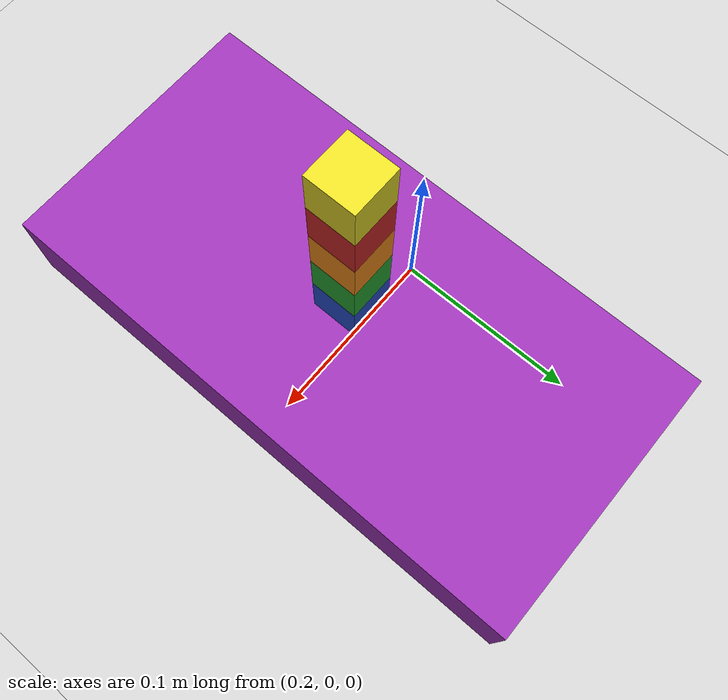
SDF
<sdf version="1.4">
  <world name="room2_with_ramp1">

    <!-- Global world -->
    <include>
      <uri>model://ground_plane</uri>
    </include>

    <!-- Global light source -->
    <include>
      <uri>model://sun</uri>
    </include>

    <physics type="ode">
      <real_time_update_rate>1000.0</real_time_update_rate>
      <max_step_size>0.001</max_step_size>
      <real_time_factor>1</real_time_factor>
      <ode>
        <solver>
          <type>quick</type>
          <iters>150</iters>
          <precon_iters>0</precon_iters>
          <sor>1.400000</sor>
          <use_dynamic_moi_rescaling>1</use_dynamic_moi_rescaling>
        </solver>
        <constraints>
          <cfm>0.00001</cfm>
          <erp>0.2</erp>
          <contact_max_correcting_vel>2000.000000</contact_max_correcting_vel>
          <contact_surface_layer>0.01000</contact_surface_layer>
        </constraints>
      </ode>
    </physics>

    <scene>
      <ambient>0.4 0.4 0.4 1</ambient>
      <background>0.7 0.7 0.7 1</background>
      <shadows>true</shadows>
    </scene>

    <gui fullscreen='0'>
      <camera name='user_camera'>
        <pose>0.8 2.0 12.0 0 1.5708 1.5708</pose>
        <view_controller>orbit</view_controller>
      </camera>
    </gui>

    <model name="ycb_base">
      <link name="link">
        <pose>0 0 0.025 0 0 0</pose>
        <inertial>
          <mass>0.01</mass>
          <inertia>
            <ixx>1</ixx>
            <ixy>0</ixy>
            <ixz>0</ixz>
            <iyy>1</iyy>
            <iyz>0</iyz>
            <izz>1</izz>
          </inertia>
        </inertial>
        <collision name='collision'>
          <geometry>
            <box>
              <size>0.15 0.3 0.05</size>
            </box>
          </geometry>
          <surface>
            <friction>
              <ode>
                <mu>1000.0</mu>
                <mu2>100.0</mu2>
              </ode>
            </friction>
            <contact>
              <ode>
                <kp>1000000.0</kp>
                <kd>100.0</kd>
                <max_vel>1.0</max_vel>
                <min_depth>0.001</min_depth>
              </ode>
            </contact>
          </surface>
        </collision>

        <visual name="visual">
          <geometry>
            <box>
              <size>0.15 0.3 0.05</size>
            </box>
          </geometry>
          <material>
            <script>
              <uri>file://media/materials/scripts/gazebo.material</uri>
              <name>Gazebo/Purple</name>
            </script>
          </material>
        </visual>
        <self_collide>0</self_collide>
        <kinematic>0</kinematic>
      </link>
      <pose>0.25 0 0 0 0 0</pose>
    </model>

    <model name="ycb_blue_wood_block">
      <link name="link">
        <pose>0 0 0.0125 0 0 0</pose>
        <inertial>
          <mass>0.01</mass>
          <inertia>
            <ixx>1</ixx>
            <ixy>0</ixy>
            <ixz>0</ixz>
            <iyy>1</iyy>
            <iyz>0</iyz>
            <izz>1</izz>
          </inertia>
        </inertial>
        <collision name='collision'>
          <geometry>
            <box>
              <size>0.025 0.025 0.025</size>
            </box>
          </geometry>
          <surface>
            <friction>
              <ode>
                <mu>1</mu>
                <mu2>1</mu2>
              </ode>
            </friction>
            <contact>
              <ode>
                <kp>1000000.0</kp>
                <kd>100.0</kd>
                <max_vel>1.0</max_vel>
                <min_depth>0.001</min_depth>
              </ode>
            </contact>
          </surface>
        </collision>
        <visual name="visual">
          <geometry>
            <box>
              <size>0.025 0.025 0.025</size>
            </box>
          </geometry>
          <material>
            <script>
              <uri>file://media/materials/scripts/gazebo.material</uri>
              <name>Gazebo/Blue</name>
            </script>
          </material>
        </visual>
        <self_collide>0</self_collide>
        <kinematic>0</kinematic>
      </link>
      <pose>0.25 0 0.05 0 0 0</pose>
    </model>

    <model name="ycb_green_wood_block">
      <link name="link">
        <pose>0 0 0.0125 0 0 0</pose>
        <inertial>
          <mass>0.01</mass>
          <inertia>
            <ixx>1</ixx>
            <ixy>0</ixy>
            <ixz>0</ixz>
            <iyy>1</iyy>
            <iyz>0</iyz>
            <izz>1</izz>
          </inertia>
        </inertial>
        <collision name='collision'>
          <geometry>
            <box>
              <size>0.025 0.025 0.025</size>
            </box>
          </geometry>
          <surface>
            <friction>
              <ode>
                <mu>1</mu>
                <mu2>1</mu2>
              </ode>
            </friction>
            <contact>
              <ode>
                <kp>1000000.0</kp>
                <kd>100.0</kd>
                <max_vel>1.0</max_vel>
                <min_depth>0.001</min_depth>
              </ode>
            </contact>
          </surface>
        </collision>
        <visual name="visual">
          <geometry>
            <box>
              <size>0.025 0.025 0.025</size>
            </box>
          </geometry>
          <material>
            <script>
              <uri>file://media/materials/scripts/gazebo.material</uri>
              <name>Gazebo/Green</name>
            </script>
          </material>
        </visual>
        <self_collide>0</self_collide>
        <kinematic>0</kinematic>
      </link>
      <pose>0.25 0 0.075 0 0 0</pose>
    </model>

    <model name="ycb_orange_wood_block">
      <link name="link">
        <pose>0 0 0.0125 0 0 0</pose>
        <inertial>
          <mass>0.01</mass>
          <inertia>
            <ixx>1</ixx>
            <ixy>0</ixy>
            <ixz>0</ixz>
            <iyy>1</iyy>
            <iyz>0</iyz>
            <izz>1</izz>
          </inertia>
        </inertial>
        <collision name='collision'>
          <geometry>
            <box>
              <size>0.025 0.025 0.025</size>
            </box>
          </geometry>
          <surface>
            <friction>
              <ode>
                <mu>1</mu>
                <mu2>1</mu2>
              </ode>
            </friction>
            <contact>
              <ode>
                <kp>1000000.0</kp>
                <kd>100.0</kd>
                <max_vel>1.0</max_vel>
                <min_depth>0.001</min_depth>
              </ode>
            </contact>
          </surface>
        </collision>
        <visual name="visual">
          <geometry>
            <box>
              <size>0.025 0.025 0.025</size>
            </box>
          </geometry>
          <material>
            <script>
              <uri>file://media/materials/scripts/gazebo.material</uri>
              <name>Gazebo/Orange</name>
            </script>
          </material>
        </visual>
        <self_collide>0</self_collide>
        <kinematic>0</kinematic>
      </link>
      <pose>0.25 0 0.1 0 0 0</pose>
    </model>

    <model name="ycb_red_wood_block">
      <link name="link">
        <pose>0 0 0.0125 0 0 0</pose>
        <inertial>
          <mass>0.01</mass>
          <inertia>
            <ixx>1</ixx>
            <ixy>0</ixy>
            <ixz>0</ixz>
            <iyy>1</iyy>
            <iyz>0</iyz>
            <izz>1</izz>
          </inertia>
        </inertial>
        <collision name='collision'>
          <geometry>
            <box>
              <size>0.025 0.025 0.025</size>
            </box>
          </geometry>
          <surface>
            <friction>
              <ode>
                <mu>1</mu>
                <mu2>1</mu2>
              </ode>
            </friction>
            <contact>
              <ode>
                <kp>1000000.0</kp>
                <kd>100.0</kd>
                <max_vel>1.0</max_vel>
                <min_depth>0.001</min_depth>
              </ode>
            </contact>
          </surface>
        </collision>
        <visual name="visual">
          <geometry>
            <box>
              <size>0.025 0.025 0.025</size>
            </box>
          </geometry>
          <material>
            <script>
              <uri>file://media/materials/scripts/gazebo.material</uri>
              <name>Gazebo/Red</name>
            </script>
          </material>
        </visual>
        <self_collide>0</self_collide>
        <kinematic>0</kinematic>
      </link>
      <pose>0.25 0 0.125 0 0 0</pose>
    </model>

    <model name="ycb_yellow_wood_block">
      <link name="link">
        <pose>0 0 0.0125 0 0 0</pose>
        <inertial>
          <mass>0.01</mass>
          <inertia>
            <ixx>1</ixx>
            <ixy>0</ixy>
            <ixz>0</ixz>
            <iyy>1</iyy>
            <iyz>0</iyz>
            <izz>1</izz>
          </inertia>
        </inertial>
        <collision name='collision'>
          <geometry>
            <box>
              <size>0.025 0.025 0.025</size>
            </box>
          </geometry>
          <surface>
            <friction>
              <ode>
                <mu>1</mu>
                <mu2>1</mu2>
              </ode>
            </friction>
            <contact>
              <ode>
                <kp>1000000.0</kp>
                <kd>100.0</kd>
                <max_vel>1.0</max_vel>
                <min_depth>0.001</min_depth>
              </ode>
            </contact>
          </surface>
        </collision>
        <visual name="visual">
          <geometry>
            <box>
              <size>0.025 0.025 0.025</size>
            </box>
          </geometry>
          <material>
            <script>
              <uri>file://media/materials/scripts/gazebo.material</uri>
              <name>Gazebo/Yellow</name>
            </script>
          </material>
        </visual>
        <self_collide>0</self_collide>
        <kinematic>0</kinematic>
      </link>
      <pose>0.25 0 0.15 0 0 0</pose>
    </model>

  </world>
</sdf>
